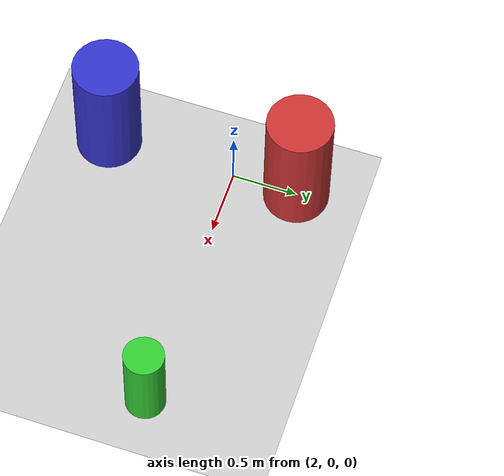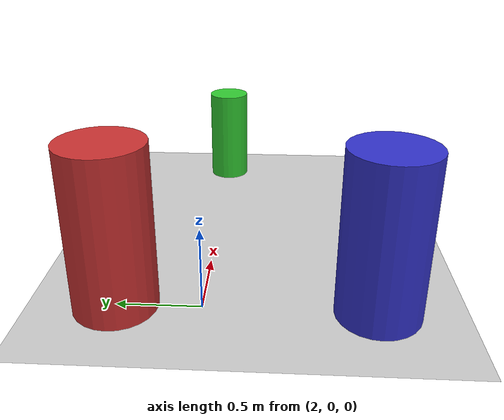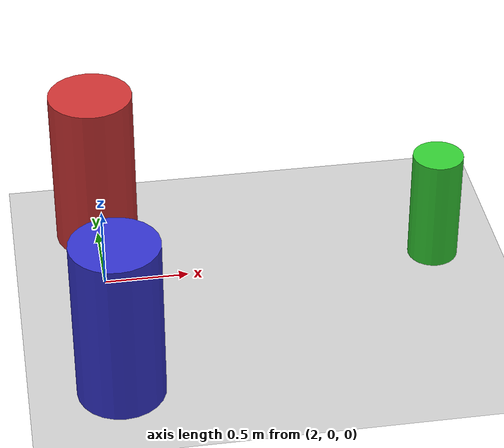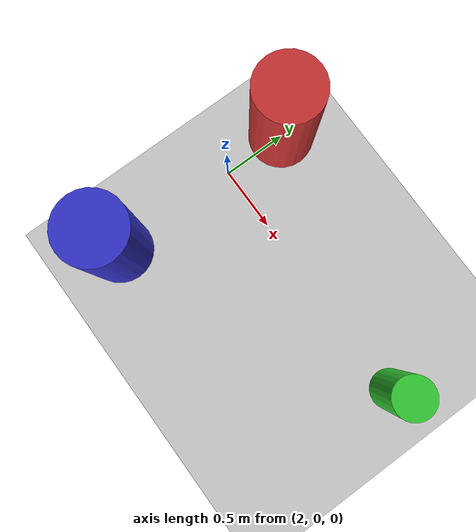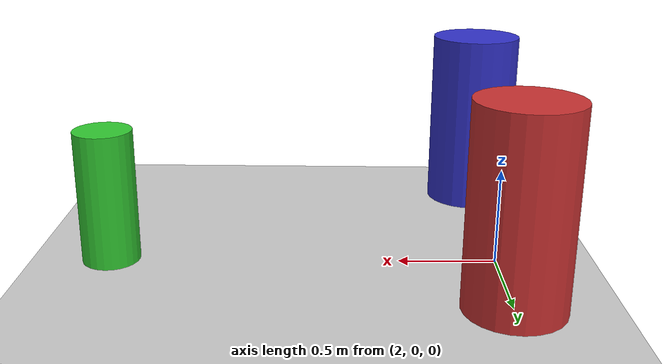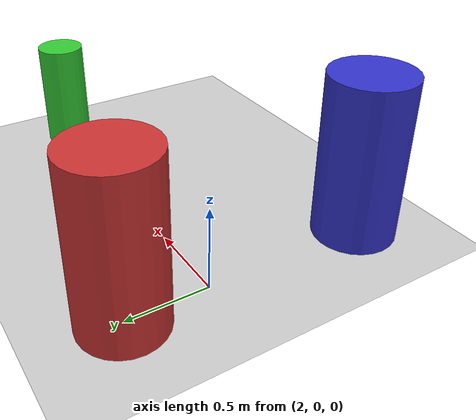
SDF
<?xml version="1.0"?>
<sdf version="1.8">
  <world name="obstacles">
    <physics name="1ms" type="ode">
      <max_step_size>0.001</max_step_size>
      <real_time_update_rate>1000.0</real_time_update_rate>
      <real_time_factor>1.0</real_time_factor>
    </physics>

    <plugin filename="gz-sim-physics-system" name="gz::sim::systems::Physics"/>
    <plugin filename="gz-sim-user-commands-system" name="gz::sim::systems::UserCommands"/>
    <plugin filename="gz-sim-scene-broadcaster-system" name="gz::sim::systems::SceneBroadcaster"/>
    <plugin filename="gz-sim-sensors-system" name="gz::sim::systems::Sensors">
      <render_engine>ogre2</render_engine>
    </plugin>
    <plugin filename="gz-sim-imu-system" name="gz::sim::systems::Imu"/>

    <!-- 地面 -->
    <model name="ground_plane">
      <static>true</static>
      <link name="link">
        <collision name="collision">
          <geometry>
            <plane>
              <normal>0 0 1</normal>
              <size>100 100</size>
            </plane>
          </geometry>
          <surface>
            <friction>
              <ode><mu>1.0</mu><mu2>1.0</mu2></ode>
            </friction>
          </surface>
        </collision>
        <visual name="visual">
          <geometry>
            <plane>
              <normal>0 0 1</normal>
              <size>100 100</size>
            </plane>
          </geometry>
          <material>
            <ambient>0.8 0.8 0.8 1</ambient>
            <diffuse>0.8 0.8 0.8 1</diffuse>
          </material>
        </visual>
      </link>
    </model>

    <!-- 障碍物：若干圆柱，用于验证避障 -->

    <!-- 圆柱障碍 1 -->
    <model name="obstacle_1">
      <static>true</static>
      <pose>2.0 0.5 0.5 0 0 0</pose>
      <link name="link">
        <collision name="collision">
          <geometry><cylinder><radius>0.25</radius><length>1.0</length></cylinder></geometry>
        </collision>
        <visual name="visual">
          <geometry><cylinder><radius>0.25</radius><length>1.0</length></cylinder></geometry>
          <material><ambient>0.8 0.2 0.2 1</ambient><diffuse>0.8 0.2 0.2 1</diffuse></material>
        </visual>
      </link>
    </model>

    <!-- 圆柱障碍 2 -->
    <model name="obstacle_2">
      <static>true</static>
      <pose>2.0 -1.0 0.5 0 0 0</pose>
      <link name="link">
        <collision name="collision">
          <geometry><cylinder><radius>0.25</radius><length>1.0</length></cylinder></geometry>
        </collision>
        <visual name="visual">
          <geometry><cylinder><radius>0.25</radius><length>1.0</length></cylinder></geometry>
          <material><ambient>0.2 0.2 0.8 1</ambient><diffuse>0.2 0.2 0.8 1</diffuse></material>
        </visual>
      </link>
    </model>

    <!-- 圆柱障碍 3 -->
    <model name="obstacle_3">
      <static>true</static>
      <pose>4.0 0.0 0.35 0 0 0</pose>
      <link name="link">
        <collision name="collision">
          <geometry><cylinder><radius>0.15</radius><length>0.7</length></cylinder></geometry>
        </collision>
        <visual name="visual">
          <geometry><cylinder><radius>0.15</radius><length>0.7</length></cylinder></geometry>
          <material><ambient>0.2 0.8 0.2 1</ambient><diffuse>0.2 0.8 0.2 1</diffuse></material>
        </visual>
      </link>
    </model>

    <!-- 环境光 -->
    <light type="directional" name="sun">
      <cast_shadows>true</cast_shadows>
      <pose>0 0 10 0 0 0</pose>
      <diffuse>0.8 0.8 0.8 1</diffuse>
      <specular>0.2 0.2 0.2 0.2</specular>
      <direction>-0.5 0.1 -0.9</direction>
    </light>
  </world>
</sdf>
